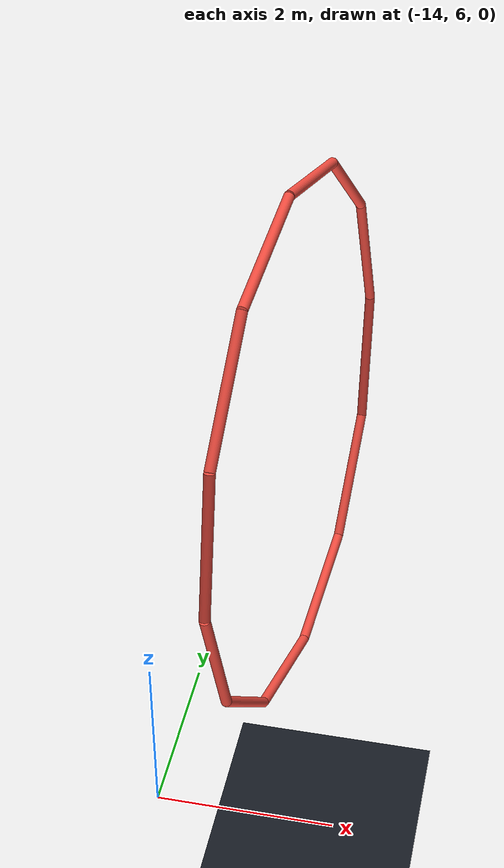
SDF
<sdf version="1.9">
 <world name="wide_scrambled_fast_closed_loop">
  <model name="ground">
   <static>true</static>
   <pose>0 0 -6 0 0 0</pose>
   <link name="link">
    <collision name="c"><geometry><plane><normal>0 0 1</normal><size>80 80</size></plane></geometry></collision>
    <visual name="v">
     <geometry><plane><normal>0 0 1</normal><size>80 80</size></plane></geometry>
     <material><diffuse>0.08 0.10 0.13 1</diffuse></material>
    </visual>
   </link>
  </model>
  <model name="gate_1_circle_arc">
   <static>true</static>
   <pose>-13.000000 9.000000 3.000000 0.000000 1.607590 3.030935</pose>
   <link name="edge_0">
    <pose>2.938990 0.787500 0 0 1.570796 1.832596</pose>
    <collision name="collision">
     <geometry><cylinder><radius>0.06</radius><length>1.630560</length></cylinder></geometry>
    </collision>
    <visual name="visual">
     <geometry><cylinder><radius>0.06</radius><length>1.630560</length></cylinder></geometry>
     <material><diffuse>0.95 0.30 0.25 1</diffuse><emissive>0.95 0.30 0.25 1</emissive></material>
    </visual>
   </link>
   <link name="edge_1">
    <pose>2.151490 2.151490 0 0 1.570796 2.356194</pose>
    <collision name="collision">
     <geometry><cylinder><radius>0.06</radius><length>1.630560</length></cylinder></geometry>
    </collision>
    <visual name="visual">
     <geometry><cylinder><radius>0.06</radius><length>1.630560</length></cylinder></geometry>
     <material><diffuse>0.95 0.30 0.25 1</diffuse><emissive>0.95 0.30 0.25 1</emissive></material>
    </visual>
   </link>
   <link name="edge_2">
    <pose>0.787500 2.938990 0 0 1.570796 2.879793</pose>
    <collision name="collision">
     <geometry><cylinder><radius>0.06</radius><length>1.630560</length></cylinder></geometry>
    </collision>
    <visual name="visual">
     <geometry><cylinder><radius>0.06</radius><length>1.630560</length></cylinder></geometry>
     <material><diffuse>0.95 0.30 0.25 1</diffuse><emissive>0.95 0.30 0.25 1</emissive></material>
    </visual>
   </link>
   <link name="edge_3">
    <pose>-0.787500 2.938990 0 0 1.570796 -2.879793</pose>
    <collision name="collision">
     <geometry><cylinder><radius>0.06</radius><length>1.630560</length></cylinder></geometry>
    </collision>
    <visual name="visual">
     <geometry><cylinder><radius>0.06</radius><length>1.630560</length></cylinder></geometry>
     <material><diffuse>0.95 0.30 0.25 1</diffuse><emissive>0.95 0.30 0.25 1</emissive></material>
    </visual>
   </link>
   <link name="edge_4">
    <pose>-2.151490 2.151490 0 0 1.570796 -2.356194</pose>
    <collision name="collision">
     <geometry><cylinder><radius>0.06</radius><length>1.630560</length></cylinder></geometry>
    </collision>
    <visual name="visual">
     <geometry><cylinder><radius>0.06</radius><length>1.630560</length></cylinder></geometry>
     <material><diffuse>0.95 0.30 0.25 1</diffuse><emissive>0.95 0.30 0.25 1</emissive></material>
    </visual>
   </link>
   <link name="edge_5">
    <pose>-2.938990 0.787500 0 0 1.570796 -1.832596</pose>
    <collision name="collision">
     <geometry><cylinder><radius>0.06</radius><length>1.630560</length></cylinder></geometry>
    </collision>
    <visual name="visual">
     <geometry><cylinder><radius>0.06</radius><length>1.630560</length></cylinder></geometry>
     <material><diffuse>0.95 0.30 0.25 1</diffuse><emissive>0.95 0.30 0.25 1</emissive></material>
    </visual>
   </link>
   <link name="edge_6">
    <pose>-2.938990 -0.787500 0 0 1.570796 -1.308997</pose>
    <collision name="collision">
     <geometry><cylinder><radius>0.06</radius><length>1.630560</length></cylinder></geometry>
    </collision>
    <visual name="visual">
     <geometry><cylinder><radius>0.06</radius><length>1.630560</length></cylinder></geometry>
     <material><diffuse>0.95 0.30 0.25 1</diffuse><emissive>0.95 0.30 0.25 1</emissive></material>
    </visual>
   </link>
   <link name="edge_7">
    <pose>-2.151490 -2.151490 0 0 1.570796 -0.785398</pose>
    <collision name="collision">
     <geometry><cylinder><radius>0.06</radius><length>1.630560</length></cylinder></geometry>
    </collision>
    <visual name="visual">
     <geometry><cylinder><radius>0.06</radius><length>1.630560</length></cylinder></geometry>
     <material><diffuse>0.95 0.30 0.25 1</diffuse><emissive>0.95 0.30 0.25 1</emissive></material>
    </visual>
   </link>
   <link name="edge_8">
    <pose>-0.787500 -2.938990 0 0 1.570796 -0.261799</pose>
    <collision name="collision">
     <geometry><cylinder><radius>0.06</radius><length>1.630560</length></cylinder></geometry>
    </collision>
    <visual name="visual">
     <geometry><cylinder><radius>0.06</radius><length>1.630560</length></cylinder></geometry>
     <material><diffuse>0.95 0.30 0.25 1</diffuse><emissive>0.95 0.30 0.25 1</emissive></material>
    </visual>
   </link>
   <link name="edge_9">
    <pose>0.787500 -2.938990 0 0 1.570796 0.261799</pose>
    <collision name="collision">
     <geometry><cylinder><radius>0.06</radius><length>1.630560</length></cylinder></geometry>
    </collision>
    <visual name="visual">
     <geometry><cylinder><radius>0.06</radius><length>1.630560</length></cylinder></geometry>
     <material><diffuse>0.95 0.30 0.25 1</diffuse><emissive>0.95 0.30 0.25 1</emissive></material>
    </visual>
   </link>
   <link name="edge_10">
    <pose>2.151490 -2.151490 0 0 1.570796 0.785398</pose>
    <collision name="collision">
     <geometry><cylinder><radius>0.06</radius><length>1.630560</length></cylinder></geometry>
    </collision>
    <visual name="visual">
     <geometry><cylinder><radius>0.06</radius><length>1.630560</length></cylinder></geometry>
     <material><diffuse>0.95 0.30 0.25 1</diffuse><emissive>0.95 0.30 0.25 1</emissive></material>
    </visual>
   </link>
   <link name="edge_11">
    <pose>2.938990 -0.787500 0 0 1.570796 1.308997</pose>
    <collision name="collision">
     <geometry><cylinder><radius>0.06</radius><length>1.630560</length></cylinder></geometry>
    </collision>
    <visual name="visual">
     <geometry><cylinder><radius>0.06</radius><length>1.630560</length></cylinder></geometry>
     <material><diffuse>0.95 0.30 0.25 1</diffuse><emissive>0.95 0.30 0.25 1</emissive></material>
    </visual>
   </link>
  </model>
 </world>
</sdf>
